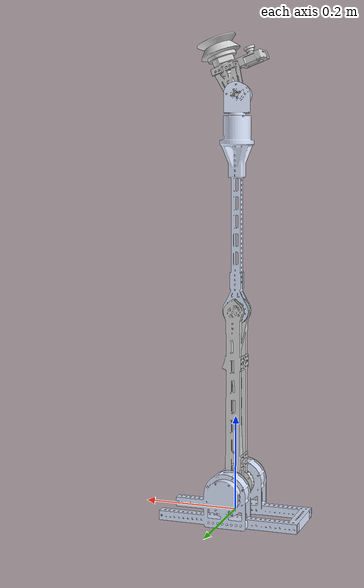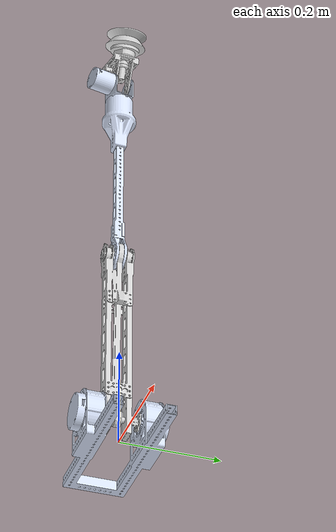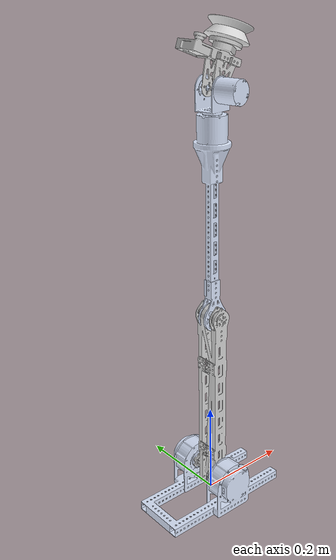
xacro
<?xml version="1.0"?>
<robot xmlns:xacro="http://www.ros.org/wiki/xacro" name="robotic_arm">
    <xacro:arg name="initial_positions_file" default="initial_positions.yaml" />

    <!-- Include Gazebo Parameters -->
    <xacro:include filename="$(find robotic_arm)/config/robotic_arm_gazebo.xacro" />

    <!-- Import robotic_arm urdf file -->
    <xacro:include filename="$(find robotic_arm)/urdf/robotic_arm.urdf" />

    <!-- Import control_xacro -->
    <xacro:include filename="gz_robotic_arm.ros2_control.xacro" />

    <xacro:robotic_arm_ros2_control name="FakeSystem" initial_positions_file="$(arg initial_positions_file)"/>

</robot>

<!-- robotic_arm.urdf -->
<robot
  name="robotic_arm">
  <link
    name="base_link">
    <inertial>
      <origin
        xyz="-0.00613174066699826 3.85470977859459E-07 0.0166481130400121"
        rpy="0 0 0" />
      <mass
        value="0.427216641570714" />
      <inertia
        ixx="0.000213744831084303"
        ixy="-2.18020596925942E-10"
        ixz="-6.30192512757199E-19"
        iyy="0.00138030141939327"
        iyz="-3.87344576298545E-20"
        izz="0.00121730119066284" />
    </inertial>
    <visual>
      <origin
        xyz="0 0 0"
        rpy="0 0 0" />
      <geometry>
        <mesh
          filename="package://robotic_arm/model/base_link.STL" />
      </geometry>
      <material
        name="">
        <color
          rgba="0.866666666666667 0.909803921568627 1 1" />
      </material>
    </visual>
    <collision>
      <origin
        xyz="0 0 0"
        rpy="0 0 0" />
      <geometry>
        <mesh
          filename="package://robotic_arm/model/base_link.STL" />
      </geometry>
    </collision>
  </link>
  <link
    name="link1">
    <inertial>
      <origin
        xyz="0.158135097125314 0.000342632794264497 0.0344812653979478"
        rpy="0 0 0" />
      <mass
        value="0.42895895814344" />
      <inertia
        ixx="5.74761063393089E-05"
        ixy="-1.98884185943665E-06"
        ixz="-8.89209679903407E-08"
        iyy="0.00242825173247488"
        iyz="1.04378146626604E-08"
        izz="0.00245260667938115" />
    </inertial>
    <visual>
      <origin
        xyz="0 0 0"
        rpy="0 0 0" />
      <geometry>
        <mesh
          filename="package://robotic_arm/model/link1.STL" />
      </geometry>
      <material
        name="">
        <color
          rgba="0.847058823529412 0.847058823529412 0.847058823529412 1" />
      </material>
    </visual>
    <collision>
      <origin
        xyz="0 0 0"
        rpy="0 0 0" />
      <geometry>
        <mesh
          filename="package://robotic_arm/model/link1.STL" />
      </geometry>
    </collision>
  </link>
  <joint
    name="joint1"
    type="revolute">
    <origin
      xyz="0 -0.04 0.05"
      rpy="1.5708 -1.5708 -3.1416" />
    <parent
      link="base_link" />
    <child
      link="link1" />
    <axis
      xyz="0 0 1" />
    <limit
      lower="0"
      upper="0"
      effort="0"
      velocity="0" />
  </joint>
  <link
    name="link2">
    <inertial>
      <origin
        xyz="0.255441404442584 -0.00550286241264522 2.44702789364837E-06"
        rpy="0 0 0" />
      <mass
        value="0.345736053543522" />
      <inertia
        ixx="0.000109745347770862"
        ixy="-8.24732430962464E-09"
        ixz="4.99650464488766E-09"
        iyy="0.000611455691487858"
        iyz="-1.28996019192405E-07"
        izz="0.000595130199534522" />
    </inertial>
    <visual>
      <origin
        xyz="0 0 0"
        rpy="0 0 0" />
      <geometry>
        <mesh
          filename="package://robotic_arm/model/link2.STL" />
      </geometry>
      <material
        name="">
        <color
          rgba="0.866666666666667 0.909803921568627 1 1" />
      </material>
    </visual>
    <collision>
      <origin
        xyz="0 0 0"
        rpy="0 0 0" />
      <geometry>
        <mesh
          filename="package://robotic_arm/model/link2.STL" />
      </geometry>
    </collision>
  </link>
  <joint
    name="joint2"
    type="revolute">
    <origin
      xyz="0.374 0 0.0401"
      rpy="1.5708 0 0" />
    <parent
      link="link1" />
    <child
      link="link2" />
    <axis
      xyz="0 -1 0" />
    <limit
      lower="0"
      upper="0"
      effort="0"
      velocity="0" />
  </joint>
  <link
    name="link3">
    <inertial>
      <origin
        xyz="-0.00196550529007689 0.0104723769838727 0.0324873038781422"
        rpy="0 0 0" />
      <mass
        value="0.0790560069863495" />
      <inertia
        ixx="2.685916592933E-05"
        ixy="-6.93466120976546E-07"
        ixz="-6.99827207689212E-08"
        iyy="3.02658377587012E-05"
        iyz="3.90412457829724E-07"
        izz="2.43012348177915E-05" />
    </inertial>
    <visual>
      <origin
        xyz="0 0 0"
        rpy="0 0 0" />
      <geometry>
        <mesh
          filename="package://robotic_arm/model/link3.STL" />
      </geometry>
      <material
        name="">
        <color
          rgba="0.866666666666667 0.909803921568627 1 1" />
      </material>
    </visual>
    <collision>
      <origin
        xyz="0 0 0"
        rpy="0 0 0" />
      <geometry>
        <mesh
          filename="package://robotic_arm/model/link3.STL" />
      </geometry>
    </collision>
  </link>
  <joint
    name="joint3"
    type="revolute">
    <origin
      xyz="0.401 -0.0055 0"
      rpy="1.5708 -1.5708 1.5708" />
    <parent
      link="link2" />
    <child
      link="link3" />
    <axis
      xyz="0 0 1" />
    <limit
      lower="0"
      upper="0"
      effort="0"
      velocity="0" />
  </joint>
  <link
    name="link4">
    <inertial>
      <origin
        xyz="0.0703269689512487 0.0145451030061502 0.0177715058555951"
        rpy="0 0 0" />
      <mass
        value="0.273624112916379" />
      <inertia
        ixx="0.000155783214944798"
        ixy="1.0803236145712E-05"
        ixz="1.35189557633175E-07"
        iyy="0.000131667366825303"
        iyz="-1.99370878917937E-07"
        izz="0.000155861616479011" />
    </inertial>
    <visual>
      <origin
        xyz="0 0 0"
        rpy="0 0 0" />
      <geometry>
        <mesh
          filename="package://robotic_arm/model/link4.STL" />
      </geometry>
      <material
        name="">
        <color
          rgba="0.847058823529412 0.847058823529412 0.847058823529412 1" />
      </material>
    </visual>
    <collision>
      <origin
        xyz="0 0 0"
        rpy="0 0 0" />
      <geometry>
        <mesh
          filename="package://robotic_arm/model/link4.STL" />
      </geometry>
    </collision>
  </link>
  <joint
    name="joint4"
    type="revolute">
    <origin
      xyz="-0.0031501 0.017214 0.0434"
      rpy="-1.5708 -1.5708 3.1416" />
    <parent
      link="link3" />
    <child
      link="link4" />
    <axis
      xyz="0 0 1" />
    <limit
      lower="0"
      upper="0"
      effort="0"
      velocity="0" />
  </joint>
</robot>
